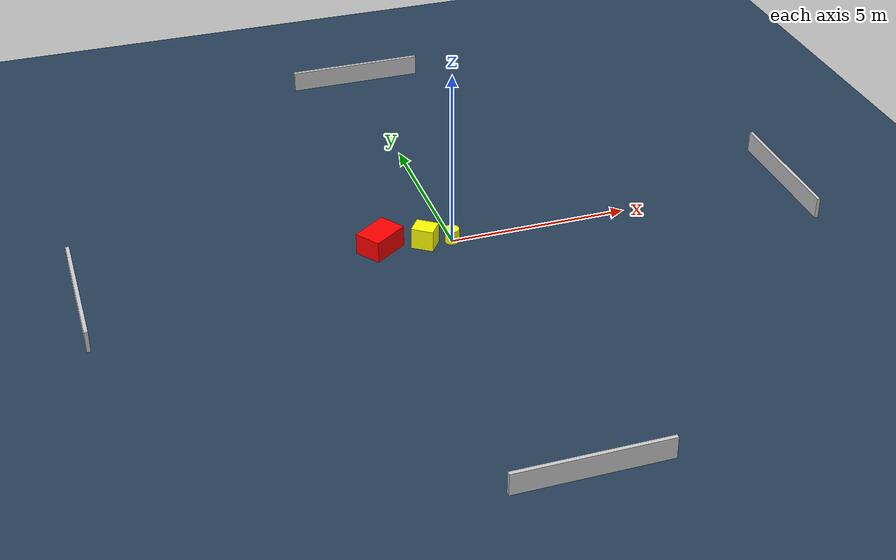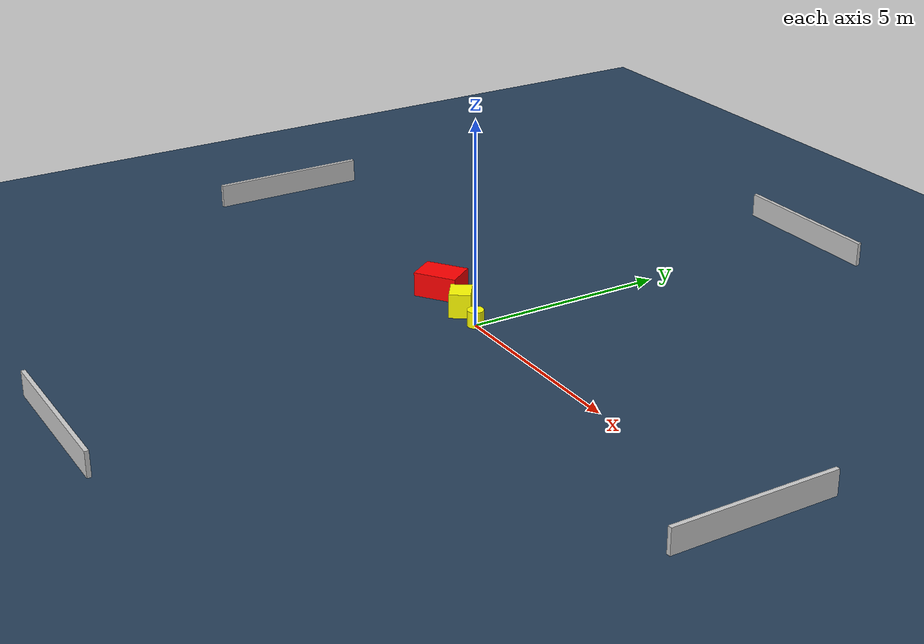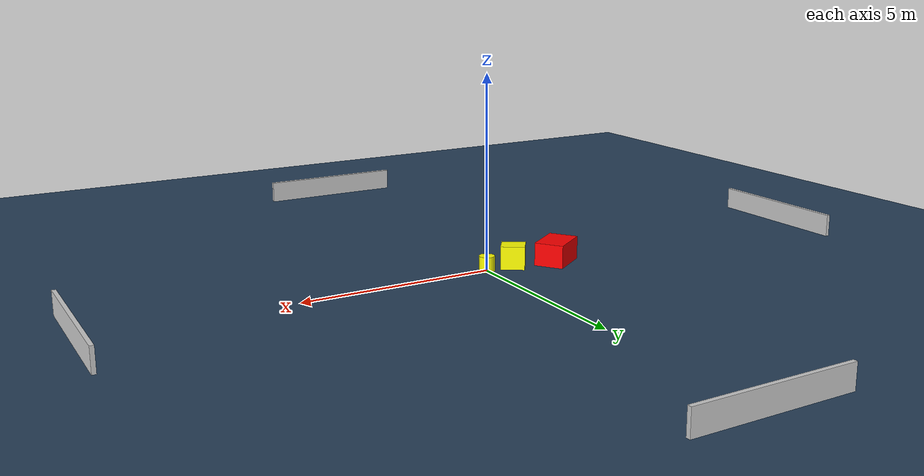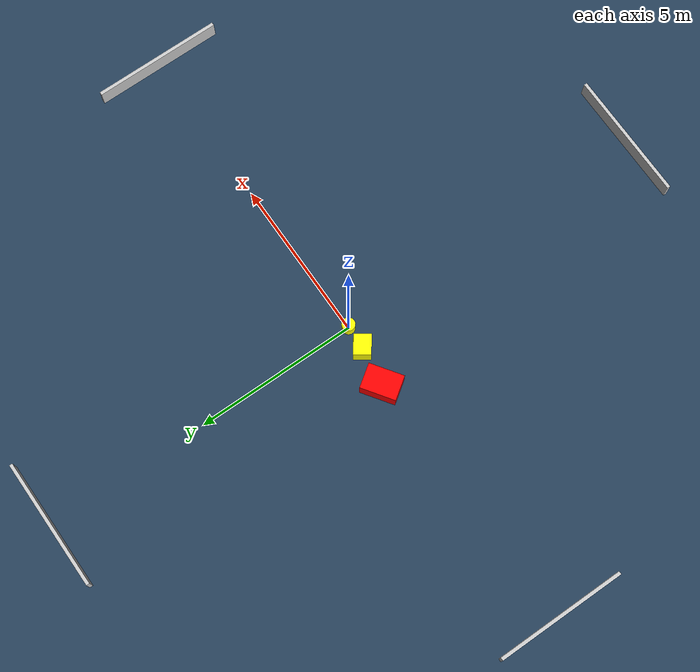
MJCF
<?xml version="1.0" ?>
<mujoco model="generated_environment">
  <option timestep="0.01" integrator="RK4" cone="elliptic"/>
  <default>
    <geom density="1"/>
  </default>
  <asset>
    <texture builtin="gradient" height="3072" name="skybox" rgb1="0.3 0.5 0.7" rgb2="0 0 0" type="skybox" width="512"/>
    <texture builtin="checker" height="300" name="groundplane" rgb1="0.2 0.3 0.4" rgb2="0.1 0.2 0.3" type="2d" width="300"/>
    <material name="groundplane" reflectance="0.2" texrepeat="5 5" texture="groundplane"/>
  </asset>
  <worldbody>
    <light dir="0 0 -1" directional="true" pos="0 0 1.5"/>
    <geom condim="3" friction="0.5 0.005 0.001" material="groundplane" name="floor" pos="0 0 0" size="0 0 0.05" type="plane"/>
    <body name="walls">
      <geom name="wall_1" condim="4" pos="-10.0 0.0 0.3" rgba="0.800000011920929 0.800000011920929 0.800000011920929 1.0" size="0.05 2.0 0.3" type="box"/>
      <geom name="wall_2" condim="4" pos="10.0 0.0 0.3" rgba="0.800000011920929 0.800000011920929 0.800000011920929 1.0" size="0.05 2.0 0.3" type="box"/>
      <geom name="wall_3" condim="4" pos="0.0 -10.0 0.3" rgba="0.800000011920929 0.800000011920929 0.800000011920929 1.0" size="2.0 0.05 0.3" type="box"/>
      <geom name="wall_4" condim="4" pos="0.0 10.0 0.3" rgba="0.800000011920929 0.800000011920929 0.800000011920929 1.0" size="2.0 0.05 0.3" type="box"/>
    </body>
    <body name="robot">
      <joint name="joint_x" type="slide" pos="0 0 0" axis="1 0 0"/>
      <joint name="joint_y" type="slide" pos="0 0 0" axis="0 1 0"/>
      <geom name="robot" type="cylinder" pos="0.0 0.0 0.2" size="0.2 0.2 0.0" mass="5.0" friction="1.0 0.005 0.0001" condim="4" rgba="1.0 1.0 0.0 1.0"/>
    </body>
    <body name="obstacle_1_movable">
      <geom name="obstacle_1_movable" condim="4" pos="-0.7508014612965009 0.04715122377174461 0.3" euler="0 0 234.64302523953273" friction="0.0 0.005 0.001" rgba="1.0 1.0 0.0 1.0" size="0.25912473875002984 0.3073398433294866 0.3" type="box" mass="0.1"/>
      <joint type="free"/>
    </body>
    <body name="obstacle_2_static">
      <geom name="obstacle_2_static" condim="4" pos="-1.9593821635432471 0.21757928188704123 0.3" euler="0 0 124.87464813728928" friction="0.0 0.005 0.001" rgba="1.0 0.0 0.0 1.0" size="0.3829624063083301 0.5391806551519138 0.3" type="box"/>
    </body>
  </worldbody>
  <actuator>
    <motor name="actuator_x" joint="joint_x" gear="1" ctrlrange="-1 1"/>
    <motor name="actuator_y" joint="joint_y" gear="1" ctrlrange="-1 1"/>
  </actuator>
</mujoco>
